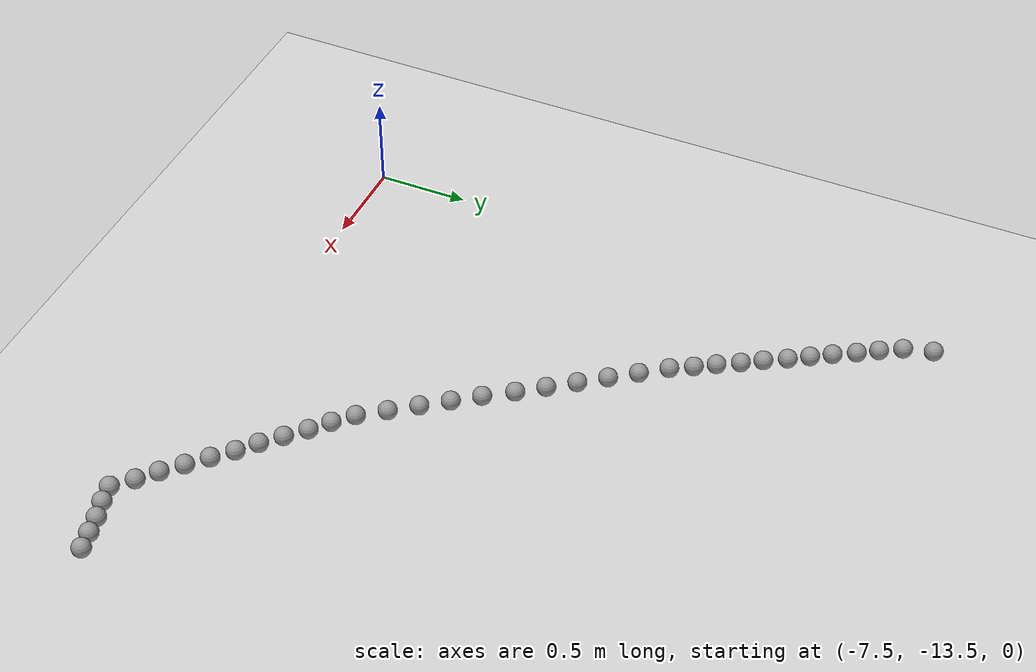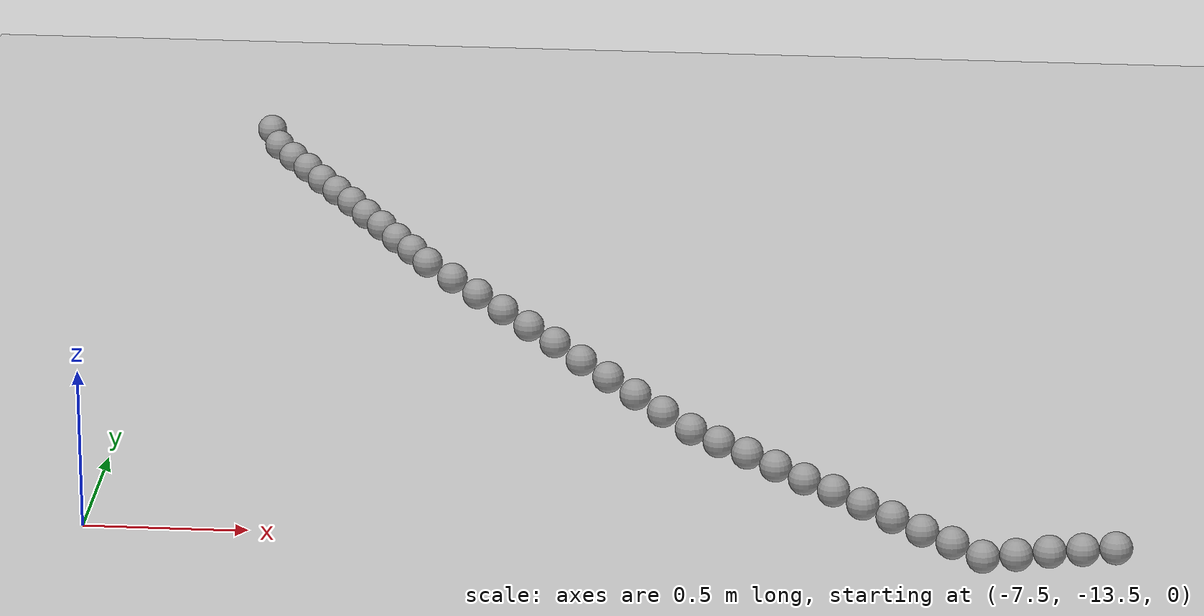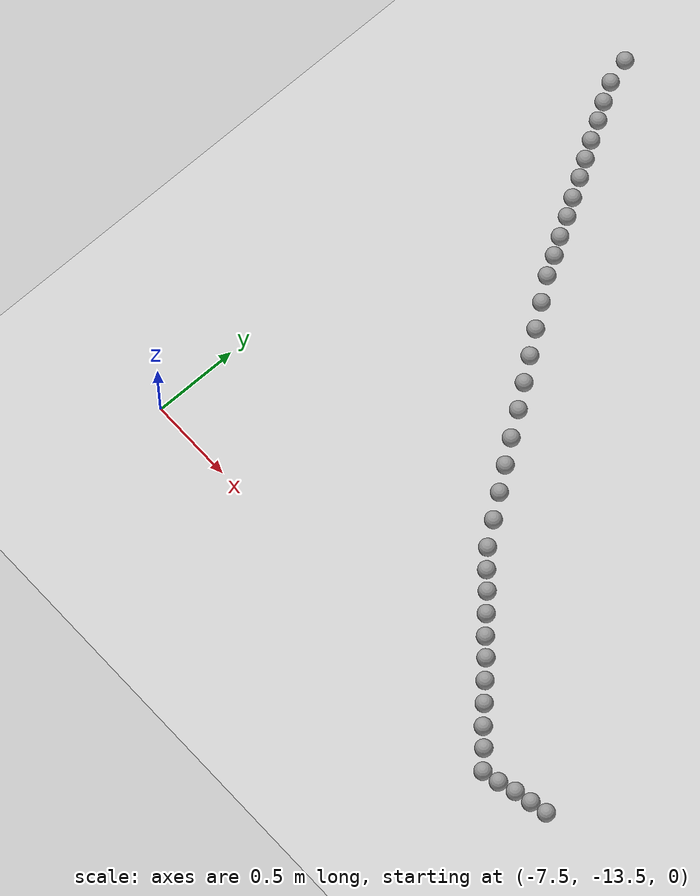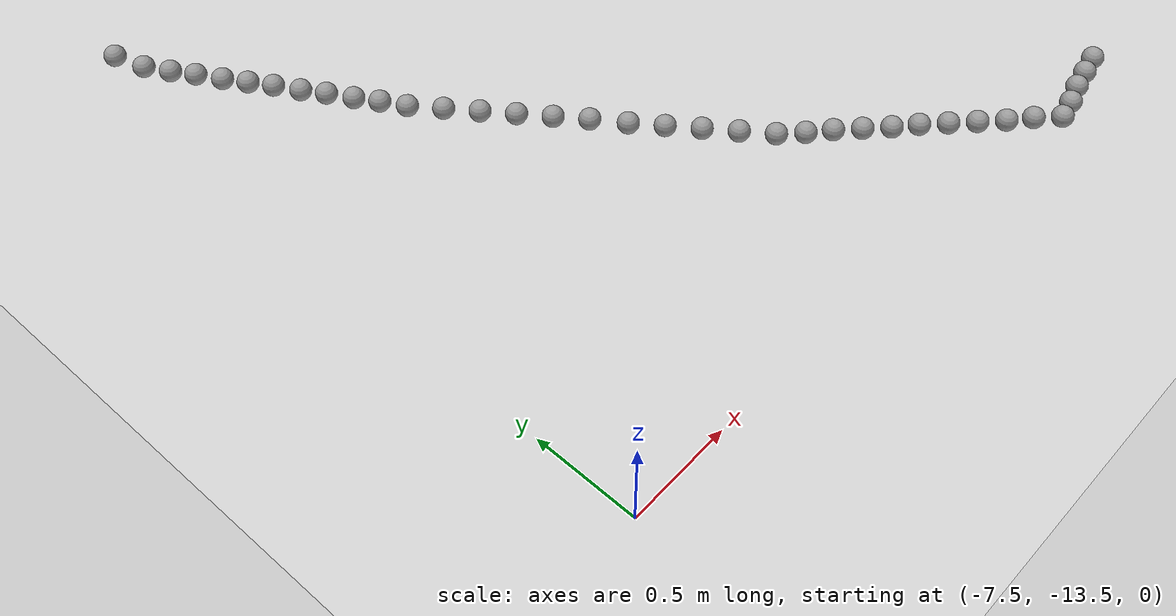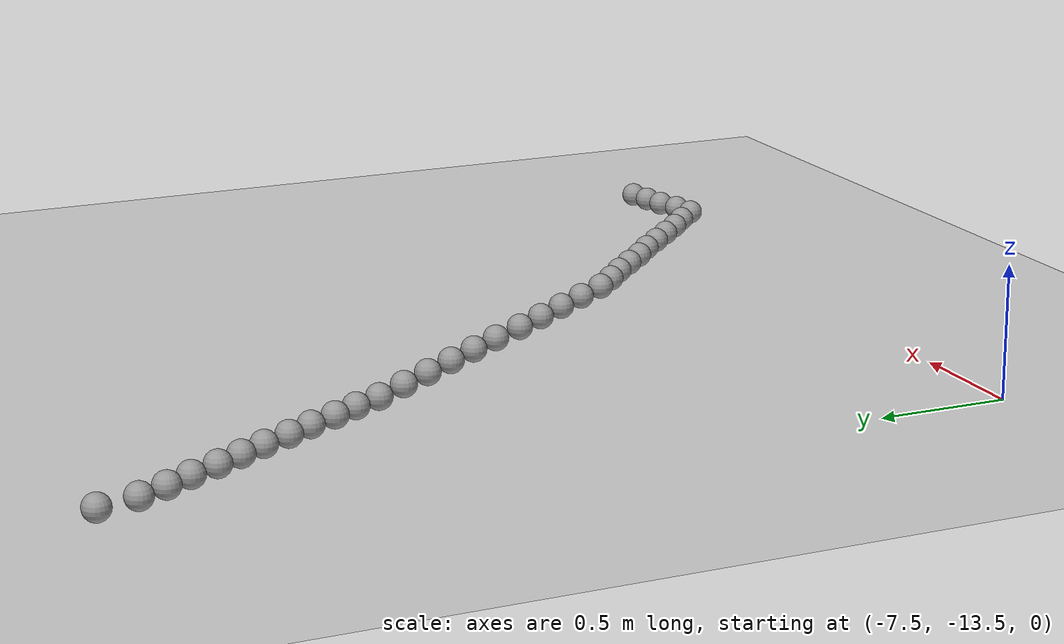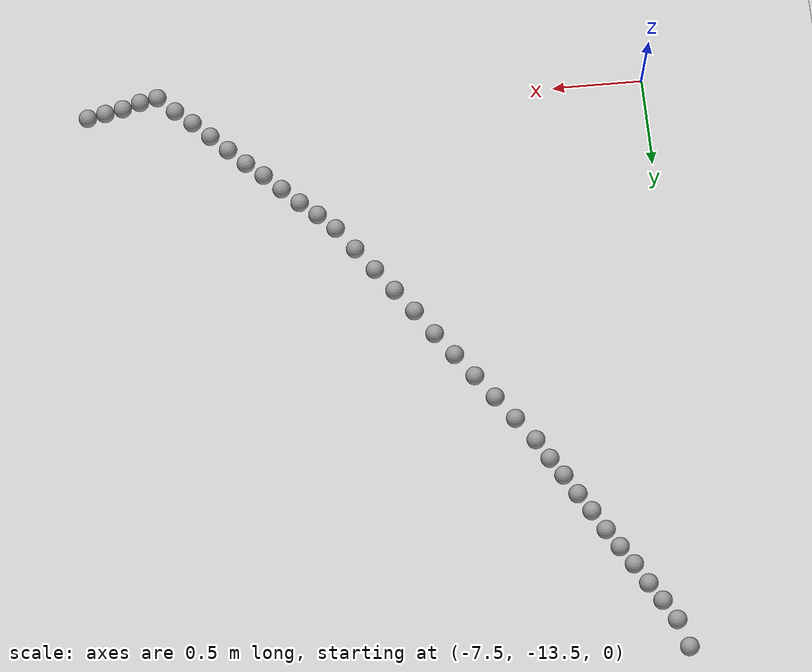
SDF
<sdf version="1.6">
 <world name="default">
  <model name="ground_plane">
   <static>1</static>
   <link name="link">
    <collision name="collision">
     <geometry><plane><normal>0 0 1</normal><size>100 100</size></plane></geometry>
     <surface><friction><ode><mu>100</mu><mu2>50</mu2></ode></friction></surface>
    </collision>
    <visual name="visual">
     <cast_shadows>0</cast_shadows>
     <geometry><plane><normal>0 0 1</normal><size>100 100</size></plane></geometry>
     <material>
      <script><uri>file://media/materials/scripts/gazebo.material</uri><name>Gazebo/Grey</name></script>
     </material>
    </visual>
   </link>
  </model>
  <model name="unit_sphere_0_289">
   <pose>-7.355000 -10.240000 0.050000 0 -0 0</pose>
   <link name="link">
    <inertial>
     <mass>1</mass>
     <inertia><ixx>0.1</ixx><ixy>0</ixy><ixz>0</ixz><iyy>0.1</iyy><iyz>0</iyz><izz>0.1</izz></inertia>
    </inertial>
    <collision name="collision"><geometry><sphere><radius>0.050000</radius></sphere></geometry></collision>
    <visual name="visual">
     <geometry><sphere><radius>0.050000</radius></sphere></geometry>
     <material>
      <script><name>Gazebo/Grey</name><uri>file://media/materials/scripts/gazebo.material</uri></script>
     </material>
    </visual>
   </link>
  </model>
  <model name="unit_sphere_0_290">
   <pose>-7.310000 -10.390000 0.050000 0 -0 0</pose>
   <link name="link">
    <inertial>
     <mass>1</mass>
     <inertia><ixx>0.1</ixx><ixy>0</ixy><ixz>0</ixz><iyy>0.1</iyy><iyz>0</iyz><izz>0.1</izz></inertia>
    </inertial>
    <collision name="collision"><geometry><sphere><radius>0.050000</radius></sphere></geometry></collision>
    <visual name="visual">
     <geometry><sphere><radius>0.050000</radius></sphere></geometry>
     <material>
      <script><name>Gazebo/Grey</name><uri>file://media/materials/scripts/gazebo.material</uri></script>
     </material>
    </visual>
   </link>
  </model>
  <model name="unit_sphere_0_291">
   <pose>-7.247000 -10.500000 0.050000 0 -0 0</pose>
   <link name="link">
    <inertial>
     <mass>1</mass>
     <inertia><ixx>0.1</ixx><ixy>0</ixy><ixz>0</ixz><iyy>0.1</iyy><iyz>0</iyz><izz>0.1</izz></inertia>
    </inertial>
    <collision name="collision"><geometry><sphere><radius>0.050000</radius></sphere></geometry></collision>
    <visual name="visual">
     <geometry><sphere><radius>0.050000</radius></sphere></geometry>
     <material>
      <script><name>Gazebo/Grey</name><uri>file://media/materials/scripts/gazebo.material</uri></script>
     </material>
    </visual>
   </link>
  </model>
  <model name="unit_sphere_0_292">
   <pose>-7.184000 -10.600000 0.050000 0 -0 0</pose>
   <link name="link">
    <inertial>
     <mass>1</mass>
     <inertia><ixx>0.1</ixx><ixy>0</ixy><ixz>0</ixz><iyy>0.1</iyy><iyz>0</iyz><izz>0.1</izz></inertia>
    </inertial>
    <collision name="collision"><geometry><sphere><radius>0.050000</radius></sphere></geometry></collision>
    <visual name="visual">
     <geometry><sphere><radius>0.050000</radius></sphere></geometry>
     <material>
      <script><name>Gazebo/Grey</name><uri>file://media/materials/scripts/gazebo.material</uri></script>
     </material>
    </visual>
   </link>
  </model>
  <model name="unit_sphere_0_293">
   <pose>-7.121000 -10.710000 0.050000 0 -0 0</pose>
   <link name="link">
    <inertial>
     <mass>1</mass>
     <inertia><ixx>0.1</ixx><ixy>0</ixy><ixz>0</ixz><iyy>0.1</iyy><iyz>0</iyz><izz>0.1</izz></inertia>
    </inertial>
    <collision name="collision"><geometry><sphere><radius>0.050000</radius></sphere></geometry></collision>
    <visual name="visual">
     <geometry><sphere><radius>0.050000</radius></sphere></geometry>
     <material>
      <script><name>Gazebo/Grey</name><uri>file://media/materials/scripts/gazebo.material</uri></script>
     </material>
    </visual>
   </link>
  </model>
  <model name="unit_sphere_0_294">
   <pose>-7.058000 -10.810000 0.050000 0 -0 0</pose>
   <link name="link">
    <inertial>
     <mass>1</mass>
     <inertia><ixx>0.1</ixx><ixy>0</ixy><ixz>0</ixz><iyy>0.1</iyy><iyz>0</iyz><izz>0.1</izz></inertia>
    </inertial>
    <collision name="collision"><geometry><sphere><radius>0.050000</radius></sphere></geometry></collision>
    <visual name="visual">
     <geometry><sphere><radius>0.050000</radius></sphere></geometry>
     <material>
      <script><name>Gazebo/Grey</name><uri>file://media/materials/scripts/gazebo.material</uri></script>
     </material>
    </visual>
   </link>
  </model>
  <model name="unit_sphere_0_295">
   <pose>-6.995000 -10.910000 0.050000 0 -0 0</pose>
   <link name="link">
    <inertial>
     <mass>1</mass>
     <inertia><ixx>0.1</ixx><ixy>0</ixy><ixz>0</ixz><iyy>0.1</iyy><iyz>0</iyz><izz>0.1</izz></inertia>
    </inertial>
    <collision name="collision"><geometry><sphere><radius>0.050000</radius></sphere></geometry></collision>
    <visual name="visual">
     <geometry><sphere><radius>0.050000</radius></sphere></geometry>
     <material>
      <script><name>Gazebo/Grey</name><uri>file://media/materials/scripts/gazebo.material</uri></script>
     </material>
    </visual>
   </link>
  </model>
  <model name="unit_sphere_0_296">
   <pose>-6.932000 -11.020000 0.050000 0 -0 0</pose>
   <link name="link">
    <inertial>
     <mass>1</mass>
     <inertia><ixx>0.1</ixx><ixy>0</ixy><ixz>0</ixz><iyy>0.1</iyy><iyz>0</iyz><izz>0.1</izz></inertia>
    </inertial>
    <collision name="collision"><geometry><sphere><radius>0.050000</radius></sphere></geometry></collision>
    <visual name="visual">
     <geometry><sphere><radius>0.050000</radius></sphere></geometry>
     <material>
      <script><name>Gazebo/Grey</name><uri>file://media/materials/scripts/gazebo.material</uri></script>
     </material>
    </visual>
   </link>
  </model>
  <model name="unit_sphere_0_297">
   <pose>-6.869000 -11.120000 0.050000 0 -0 0</pose>
   <link name="link">
    <inertial>
     <mass>1</mass>
     <inertia><ixx>0.1</ixx><ixy>0</ixy><ixz>0</ixz><iyy>0.1</iyy><iyz>0</iyz><izz>0.1</izz></inertia>
    </inertial>
    <collision name="collision"><geometry><sphere><radius>0.050000</radius></sphere></geometry></collision>
    <visual name="visual">
     <geometry><sphere><radius>0.050000</radius></sphere></geometry>
     <material>
      <script><name>Gazebo/Grey</name><uri>file://media/materials/scripts/gazebo.material</uri></script>
     </material>
    </visual>
   </link>
  </model>
  <model name="unit_sphere_0_298">
   <pose>-6.806000 -11.230000 0.050000 0 -0 0</pose>
   <link name="link">
    <inertial>
     <mass>1</mass>
     <inertia><ixx>0.1</ixx><ixy>0</ixy><ixz>0</ixz><iyy>0.1</iyy><iyz>0</iyz><izz>0.1</izz></inertia>
    </inertial>
    <collision name="collision"><geometry><sphere><radius>0.050000</radius></sphere></geometry></collision>
    <visual name="visual">
     <geometry><sphere><radius>0.050000</radius></sphere></geometry>
     <material>
      <script><name>Gazebo/Grey</name><uri>file://media/materials/scripts/gazebo.material</uri></script>
     </material>
    </visual>
   </link>
  </model>
  <model name="unit_sphere_0_299">
   <pose>-6.743000 -11.330000 0.050000 0 -0 0</pose>
   <link name="link">
    <inertial>
     <mass>1</mass>
     <inertia><ixx>0.1</ixx><ixy>0</ixy><ixz>0</ixz><iyy>0.1</iyy><iyz>0</iyz><izz>0.1</izz></inertia>
    </inertial>
    <collision name="collision"><geometry><sphere><radius>0.050000</radius></sphere></geometry></collision>
    <visual name="visual">
     <geometry><sphere><radius>0.050000</radius></sphere></geometry>
     <material>
      <script><name>Gazebo/Grey</name><uri>file://media/materials/scripts/gazebo.material</uri></script>
     </material>
    </visual>
   </link>
  </model>
  <model name="unit_sphere_0_300">
   <pose>-6.680000 -11.440000 0.050000 0 -0 0</pose>
   <link name="link">
    <inertial>
     <mass>1</mass>
     <inertia><ixx>0.1</ixx><ixy>0</ixy><ixz>0</ixz><iyy>0.1</iyy><iyz>0</iyz><izz>0.1</izz></inertia>
    </inertial>
    <collision name="collision"><geometry><sphere><radius>0.050000</radius></sphere></geometry></collision>
    <visual name="visual">
     <geometry><sphere><radius>0.050000</radius></sphere></geometry>
     <material>
      <script><name>Gazebo/Grey</name><uri>file://media/materials/scripts/gazebo.material</uri></script>
     </material>
    </visual>
   </link>
  </model>
  <model name="unit_sphere_0_301">
   <pose>-6.584000 -11.570000 0.050000 0 -0 0</pose>
   <link name="link">
    <inertial>
     <mass>1</mass>
     <inertia><ixx>0.1</ixx><ixy>0</ixy><ixz>0</ixz><iyy>0.1</iyy><iyz>0</iyz><izz>0.1</izz></inertia>
    </inertial>
    <collision name="collision"><geometry><sphere><radius>0.050000</radius></sphere></geometry></collision>
    <visual name="visual">
     <geometry><sphere><radius>0.050000</radius></sphere></geometry>
     <material>
      <script><name>Gazebo/Grey</name><uri>file://media/materials/scripts/gazebo.material</uri></script>
     </material>
    </visual>
   </link>
  </model>
  <model name="unit_sphere_0_302">
   <pose>-6.488000 -11.700000 0.050000 0 -0 0</pose>
   <link name="link">
    <inertial>
     <mass>1</mass>
     <inertia><ixx>0.1</ixx><ixy>0</ixy><ixz>0</ixz><iyy>0.1</iyy><iyz>0</iyz><izz>0.1</izz></inertia>
    </inertial>
    <collision name="collision"><geometry><sphere><radius>0.050000</radius></sphere></geometry></collision>
    <visual name="visual">
     <geometry><sphere><radius>0.050000</radius></sphere></geometry>
     <material>
      <script><name>Gazebo/Grey</name><uri>file://media/materials/scripts/gazebo.material</uri></script>
     </material>
    </visual>
   </link>
  </model>
  <model name="unit_sphere_0_303">
   <pose>-6.392000 -11.830000 0.050000 0 -0 0</pose>
   <link name="link">
    <inertial>
     <mass>1</mass>
     <inertia><ixx>0.1</ixx><ixy>0</ixy><ixz>0</ixz><iyy>0.1</iyy><iyz>0</iyz><izz>0.1</izz></inertia>
    </inertial>
    <collision name="collision"><geometry><sphere><radius>0.050000</radius></sphere></geometry></collision>
    <visual name="visual">
     <geometry><sphere><radius>0.050000</radius></sphere></geometry>
     <material>
      <script><name>Gazebo/Grey</name><uri>file://media/materials/scripts/gazebo.material</uri></script>
     </material>
    </visual>
   </link>
  </model>
  <model name="unit_sphere_0_304">
   <pose>-6.296000 -11.960000 0.050000 0 -0 0</pose>
   <link name="link">
    <inertial>
     <mass>1</mass>
     <inertia><ixx>0.1</ixx><ixy>0</ixy><ixz>0</ixz><iyy>0.1</iyy><iyz>0</iyz><izz>0.1</izz></inertia>
    </inertial>
    <collision name="collision"><geometry><sphere><radius>0.050000</radius></sphere></geometry></collision>
    <visual name="visual">
     <geometry><sphere><radius>0.050000</radius></sphere></geometry>
     <material>
      <script><name>Gazebo/Grey</name><uri>file://media/materials/scripts/gazebo.material</uri></script>
     </material>
    </visual>
   </link>
  </model>
  <model name="unit_sphere_0_305">
   <pose>-6.200000 -12.090000 0.050000 0 -0 0</pose>
   <link name="link">
    <inertial>
     <mass>1</mass>
     <inertia><ixx>0.1</ixx><ixy>0</ixy><ixz>0</ixz><iyy>0.1</iyy><iyz>0</iyz><izz>0.1</izz></inertia>
    </inertial>
    <collision name="collision"><geometry><sphere><radius>0.050000</radius></sphere></geometry></collision>
    <visual name="visual">
     <geometry><sphere><radius>0.050000</radius></sphere></geometry>
     <material>
      <script><name>Gazebo/Grey</name><uri>file://media/materials/scripts/gazebo.material</uri></script>
     </material>
    </visual>
   </link>
  </model>
  <model name="unit_sphere_0_306">
   <pose>-6.104000 -12.230000 0.050000 0 -0 0</pose>
   <link name="link">
    <inertial>
     <mass>1</mass>
     <inertia><ixx>0.1</ixx><ixy>0</ixy><ixz>0</ixz><iyy>0.1</iyy><iyz>0</iyz><izz>0.1</izz></inertia>
    </inertial>
    <collision name="collision"><geometry><sphere><radius>0.050000</radius></sphere></geometry></collision>
    <visual name="visual">
     <geometry><sphere><radius>0.050000</radius></sphere></geometry>
     <material>
      <script><name>Gazebo/Grey</name><uri>file://media/materials/scripts/gazebo.material</uri></script>
     </material>
    </visual>
   </link>
  </model>
  <model name="unit_sphere_0_307">
   <pose>-6.008000 -12.360000 0.050000 0 -0 0</pose>
   <link name="link">
    <inertial>
     <mass>1</mass>
     <inertia><ixx>0.1</ixx><ixy>0</ixy><ixz>0</ixz><iyy>0.1</iyy><iyz>0</iyz><izz>0.1</izz></inertia>
    </inertial>
    <collision name="collision"><geometry><sphere><radius>0.050000</radius></sphere></geometry></collision>
    <visual name="visual">
     <geometry><sphere><radius>0.050000</radius></sphere></geometry>
     <material>
      <script><name>Gazebo/Grey</name><uri>file://media/materials/scripts/gazebo.material</uri></script>
     </material>
    </visual>
   </link>
  </model>
  <model name="unit_sphere_0_308">
   <pose>-5.912000 -12.490000 0.050000 0 -0 0</pose>
   <link name="link">
    <inertial>
     <mass>1</mass>
     <inertia><ixx>0.1</ixx><ixy>0</ixy><ixz>0</ixz><iyy>0.1</iyy><iyz>0</iyz><izz>0.1</izz></inertia>
    </inertial>
    <collision name="collision"><geometry><sphere><radius>0.050000</radius></sphere></geometry></collision>
    <visual name="visual">
     <geometry><sphere><radius>0.050000</radius></sphere></geometry>
     <material>
      <script><name>Gazebo/Grey</name><uri>file://media/materials/scripts/gazebo.material</uri></script>
     </material>
    </visual>
   </link>
  </model>
  <model name="unit_sphere_0_309">
   <pose>-5.816000 -12.620000 0.050000 0 -0 0</pose>
   <link name="link">
    <inertial>
     <mass>1</mass>
     <inertia><ixx>0.1</ixx><ixy>0</ixy><ixz>0</ixz><iyy>0.1</iyy><iyz>0</iyz><izz>0.1</izz></inertia>
    </inertial>
    <collision name="collision"><geometry><sphere><radius>0.050000</radius></sphere></geometry></collision>
    <visual name="visual">
     <geometry><sphere><radius>0.050000</radius></sphere></geometry>
     <material>
      <script><name>Gazebo/Grey</name><uri>file://media/materials/scripts/gazebo.material</uri></script>
     </material>
    </visual>
   </link>
  </model>
  <model name="unit_sphere_0_310">
   <pose>-5.720000 -12.750000 0.050000 0 -0 0</pose>
   <link name="link">
    <inertial>
     <mass>1</mass>
     <inertia><ixx>0.1</ixx><ixy>0</ixy><ixz>0</ixz><iyy>0.1</iyy><iyz>0</iyz><izz>0.1</izz></inertia>
    </inertial>
    <collision name="collision"><geometry><sphere><radius>0.050000</radius></sphere></geometry></collision>
    <visual name="visual">
     <geometry><sphere><radius>0.050000</radius></sphere></geometry>
     <material>
      <script><name>Gazebo/Grey</name><uri>file://media/materials/scripts/gazebo.material</uri></script>
     </material>
    </visual>
   </link>
  </model>
  <model name="unit_sphere_0_311">
   <pose>-5.628000 -12.840000 0.050000 0 -0 0</pose>
   <link name="link">
    <inertial>
     <mass>1</mass>
     <inertia><ixx>0.1</ixx><ixy>0</ixy><ixz>0</ixz><iyy>0.1</iyy><iyz>0</iyz><izz>0.1</izz></inertia>
    </inertial>
    <collision name="collision"><geometry><sphere><radius>0.050000</radius></sphere></geometry></collision>
    <visual name="visual">
     <geometry><sphere><radius>0.050000</radius></sphere></geometry>
     <material>
      <script><name>Gazebo/Grey</name><uri>file://media/materials/scripts/gazebo.material</uri></script>
     </material>
    </visual>
   </link>
  </model>
  <model name="unit_sphere_0_312">
   <pose>-5.536000 -12.920000 0.050000 0 -0 0</pose>
   <link name="link">
    <inertial>
     <mass>1</mass>
     <inertia><ixx>0.1</ixx><ixy>0</ixy><ixz>0</ixz><iyy>0.1</iyy><iyz>0</iyz><izz>0.1</izz></inertia>
    </inertial>
    <collision name="collision"><geometry><sphere><radius>0.050000</radius></sphere></geometry></collision>
    <visual name="visual">
     <geometry><sphere><radius>0.050000</radius></sphere></geometry>
     <material>
      <script><name>Gazebo/Grey</name><uri>file://media/materials/scripts/gazebo.material</uri></script>
     </material>
    </visual>
   </link>
  </model>
  <model name="unit_sphere_0_313">
   <pose>-5.444000 -13.010000 0.050000 0 -0 0</pose>
   <link name="link">
    <inertial>
     <mass>1</mass>
     <inertia><ixx>0.1</ixx><ixy>0</ixy><ixz>0</ixz><iyy>0.1</iyy><iyz>0</iyz><izz>0.1</izz></inertia>
    </inertial>
    <collision name="collision"><geometry><sphere><radius>0.050000</radius></sphere></geometry></collision>
    <visual name="visual">
     <geometry><sphere><radius>0.050000</radius></sphere></geometry>
     <material>
      <script><name>Gazebo/Grey</name><uri>file://media/materials/scripts/gazebo.material</uri></script>
     </material>
    </visual>
   </link>
  </model>
  <model name="unit_sphere_0_314">
   <pose>-5.352000 -13.100000 0.050000 0 -0 0</pose>
   <link name="link">
    <inertial>
     <mass>1</mass>
     <inertia><ixx>0.1</ixx><ixy>0</ixy><ixz>0</ixz><iyy>0.1</iyy><iyz>0</iyz><izz>0.1</izz></inertia>
    </inertial>
    <collision name="collision"><geometry><sphere><radius>0.050000</radius></sphere></geometry></collision>
    <visual name="visual">
     <geometry><sphere><radius>0.050000</radius></sphere></geometry>
     <material>
      <script><name>Gazebo/Grey</name><uri>file://media/materials/scripts/gazebo.material</uri></script>
     </material>
    </visual>
   </link>
  </model>
  <model name="unit_sphere_0_315">
   <pose>-5.260000 -13.180000 0.050000 0 -0 0</pose>
   <link name="link">
    <inertial>
     <mass>1</mass>
     <inertia><ixx>0.1</ixx><ixy>0</ixy><ixz>0</ixz><iyy>0.1</iyy><iyz>0</iyz><izz>0.1</izz></inertia>
    </inertial>
    <collision name="collision"><geometry><sphere><radius>0.050000</radius></sphere></geometry></collision>
    <visual name="visual">
     <geometry><sphere><radius>0.050000</radius></sphere></geometry>
     <material>
      <script><name>Gazebo/Grey</name><uri>file://media/materials/scripts/gazebo.material</uri></script>
     </material>
    </visual>
   </link>
  </model>
  <model name="unit_sphere_0_316">
   <pose>-5.168000 -13.270000 0.050000 0 -0 0</pose>
   <link name="link">
    <inertial>
     <mass>1</mass>
     <inertia><ixx>0.1</ixx><ixy>0</ixy><ixz>0</ixz><iyy>0.1</iyy><iyz>0</iyz><izz>0.1</izz></inertia>
    </inertial>
    <collision name="collision"><geometry><sphere><radius>0.050000</radius></sphere></geometry></collision>
    <visual name="visual">
     <geometry><sphere><radius>0.050000</radius></sphere></geometry>
     <material>
      <script><name>Gazebo/Grey</name><uri>file://media/materials/scripts/gazebo.material</uri></script>
     </material>
    </visual>
   </link>
  </model>
  <model name="unit_sphere_0_317">
   <pose>-5.076000 -13.360000 0.050000 0 -0 0</pose>
   <link name="link">
    <inertial>
     <mass>1</mass>
     <inertia><ixx>0.1</ixx><ixy>0</ixy><ixz>0</ixz><iyy>0.1</iyy><iyz>0</iyz><izz>0.1</izz></inertia>
    </inertial>
    <collision name="collision"><geometry><sphere><radius>0.050000</radius></sphere></geometry></collision>
    <visual name="visual">
     <geometry><sphere><radius>0.050000</radius></sphere></geometry>
     <material>
      <script><name>Gazebo/Grey</name><uri>file://media/materials/scripts/gazebo.material</uri></script>
     </material>
    </visual>
   </link>
  </model>
  <model name="unit_sphere_0_318">
   <pose>-4.984000 -13.450000 0.050000 0 -0 0</pose>
   <link name="link">
    <inertial>
     <mass>1</mass>
     <inertia><ixx>0.1</ixx><ixy>0</ixy><ixz>0</ixz><iyy>0.1</iyy><iyz>0</iyz><izz>0.1</izz></inertia>
    </inertial>
    <collision name="collision"><geometry><sphere><radius>0.050000</radius></sphere></geometry></collision>
    <visual name="visual">
     <geometry><sphere><radius>0.050000</radius></sphere></geometry>
     <material>
      <script><name>Gazebo/Grey</name><uri>file://media/materials/scripts/gazebo.material</uri></script>
     </material>
    </visual>
   </link>
  </model>
  <model name="unit_sphere_0_319">
   <pose>-4.892000 -13.530000 0.050000 0 -0 0</pose>
   <link name="link">
    <inertial>
     <mass>1</mass>
     <inertia><ixx>0.1</ixx><ixy>0</ixy><ixz>0</ixz><iyy>0.1</iyy><iyz>0</iyz><izz>0.1</izz></inertia>
    </inertial>
    <collision name="collision"><geometry><sphere><radius>0.050000</radius></sphere></geometry></collision>
    <visual name="visual">
     <geometry><sphere><radius>0.050000</radius></sphere></geometry>
     <material>
      <script><name>Gazebo/Grey</name><uri>file://media/materials/scripts/gazebo.material</uri></script>
     </material>
    </visual>
   </link>
  </model>
  <model name="unit_sphere_0_320">
   <pose>-4.800000 -13.620000 0.050000 0 -0 0</pose>
   <link name="link">
    <inertial>
     <mass>1</mass>
     <inertia><ixx>0.1</ixx><ixy>0</ixy><ixz>0</ixz><iyy>0.1</iyy><iyz>0</iyz><izz>0.1</izz></inertia>
    </inertial>
    <collision name="collision"><geometry><sphere><radius>0.050000</radius></sphere></geometry></collision>
    <visual name="visual">
     <geometry><sphere><radius>0.050000</radius></sphere></geometry>
     <material>
      <script><name>Gazebo/Grey</name><uri>file://media/materials/scripts/gazebo.material</uri></script>
     </material>
    </visual>
   </link>
  </model>
  <model name="unit_sphere_0_321">
   <pose>-4.702000 -13.600000 0.050000 0 -0 0</pose>
   <link name="link">
    <inertial>
     <mass>1</mass>
     <inertia><ixx>0.1</ixx><ixy>0</ixy><ixz>0</ixz><iyy>0.1</iyy><iyz>0</iyz><izz>0.1</izz></inertia>
    </inertial>
    <collision name="collision"><geometry><sphere><radius>0.050000</radius></sphere></geometry></collision>
    <visual name="visual">
     <geometry><sphere><radius>0.050000</radius></sphere></geometry>
     <material>
      <script><name>Gazebo/Grey</name><uri>file://media/materials/scripts/gazebo.material</uri></script>
     </material>
    </visual>
   </link>
  </model>
  <model name="unit_sphere_0_322">
   <pose>-4.604000 -13.570000 0.050000 0 -0 0</pose>
   <link name="link">
    <inertial>
     <mass>1</mass>
     <inertia><ixx>0.1</ixx><ixy>0</ixy><ixz>0</ixz><iyy>0.1</iyy><iyz>0</iyz><izz>0.1</izz></inertia>
    </inertial>
    <collision name="collision"><geometry><sphere><radius>0.050000</radius></sphere></geometry></collision>
    <visual name="visual">
     <geometry><sphere><radius>0.050000</radius></sphere></geometry>
     <material>
      <script><name>Gazebo/Grey</name><uri>file://media/materials/scripts/gazebo.material</uri></script>
     </material>
    </visual>
   </link>
  </model>
  <model name="unit_sphere_0_323">
   <pose>-4.506000 -13.550000 0.050000 0 -0 0</pose>
   <link name="link">
    <inertial>
     <mass>1</mass>
     <inertia><ixx>0.1</ixx><ixy>0</ixy><ixz>0</ixz><iyy>0.1</iyy><iyz>0</iyz><izz>0.1</izz></inertia>
    </inertial>
    <collision name="collision"><geometry><sphere><radius>0.050000</radius></sphere></geometry></collision>
    <visual name="visual">
     <geometry><sphere><radius>0.050000</radius></sphere></geometry>
     <material>
      <script><name>Gazebo/Grey</name><uri>file://media/materials/scripts/gazebo.material</uri></script>
     </material>
    </visual>
   </link>
  </model>
  <model name="unit_sphere_0_324">
   <pose>-4.408000 -13.530000 0.050000 0 -0 0</pose>
   <link name="link">
    <inertial>
     <mass>1</mass>
     <inertia><ixx>0.1</ixx><ixy>0</ixy><ixz>0</ixz><iyy>0.1</iyy><iyz>0</iyz><izz>0.1</izz></inertia>
    </inertial>
    <collision name="collision"><geometry><sphere><radius>0.050000</radius></sphere></geometry></collision>
    <visual name="visual">
     <geometry><sphere><radius>0.050000</radius></sphere></geometry>
     <material>
      <script><name>Gazebo/Grey</name><uri>file://media/materials/scripts/gazebo.material</uri></script>
     </material>
    </visual>
   </link>
  </model>
 </world>
</sdf>
